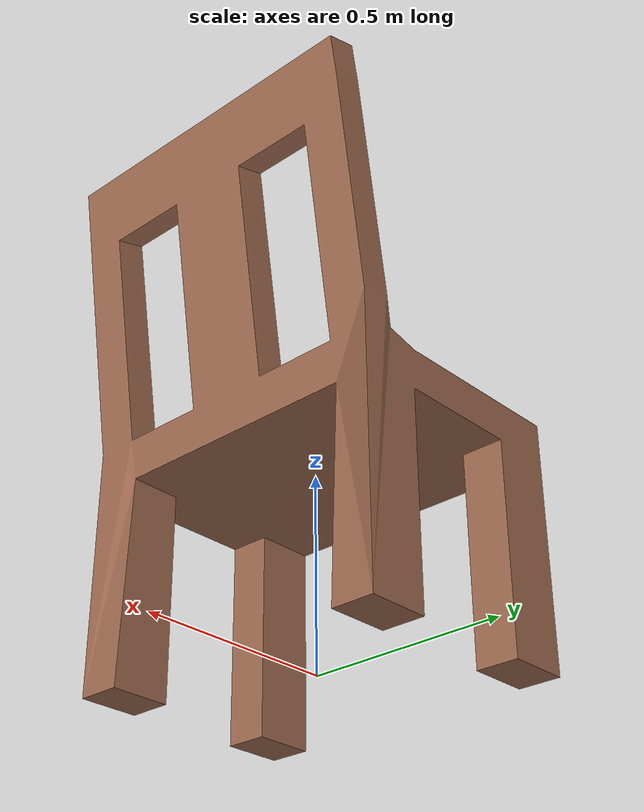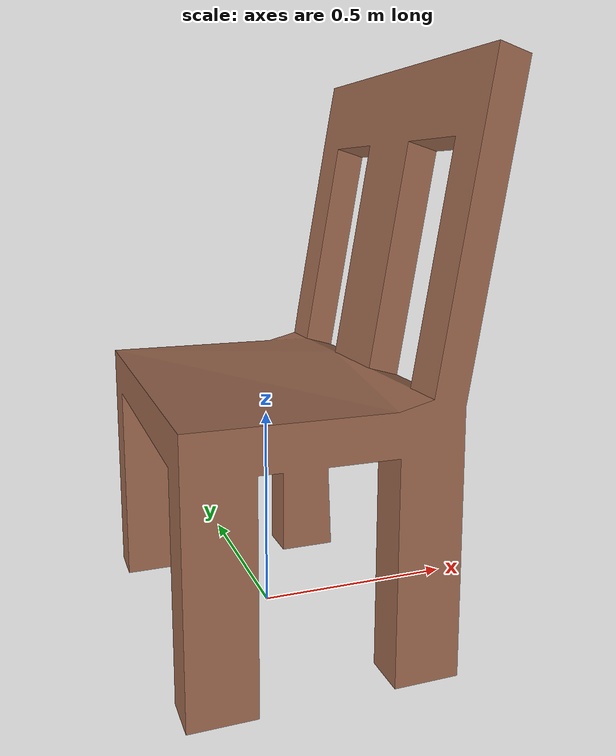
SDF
<?xml version="1.0" ?>
<sdf version="1.6">
  <model name="CHS-Chair">
    <static>true</static>
    <!-- Pose: X Y Z Roll Pitch Yaw (in meters and radians) -->
    <pose>0 0 0.55 0 0 0</pose>

    <link name="link">
      <inertial>
        <mass>5.0</mass>
        <inertia>
          <ixx>0.083</ixx>
          <ixy>0.0</ixy>
          <ixz>0.0</ixz>
          <iyy>0.083</iyy>
          <iyz>0.0</iyz>
          <izz>0.083</izz>
        </inertia>
      </inertial>

      <collision name="collision">
        <geometry>
          <mesh>
            <uri>model://CHS-Chair/meshes/CHS-Chair.stl</uri>
            <scale>1 1 1</scale>
          </mesh>
        </geometry>
        <surface>
          <friction>
            <ode>
              <mu>1.0</mu>
              <mu2>1.0</mu2>
            </ode>
          </friction>
          <contact>
            <ode>
              <kp>1e7</kp>
              <kd>1</kd>
              <min_depth>0.001</min_depth>
            </ode>
          </contact>
        </surface>
      </collision>

      <visual name="visual">
        <geometry>
          <mesh>
            <uri>model://CHS-Chair/meshes/CHS-Chair.stl</uri>
            <scale>1 1 1</scale>
          </mesh>
        </geometry>
        <material>
          <ambient>0.5 0.3 0.2 1</ambient>
          <diffuse>0.6 0.4 0.3 1</diffuse>
          <specular>0.1 0.1 0.1 1</specular>
          <emissive>0 0 0 1</emissive>
        </material>
      </visual>
    </link>
  </model>
</sdf>
